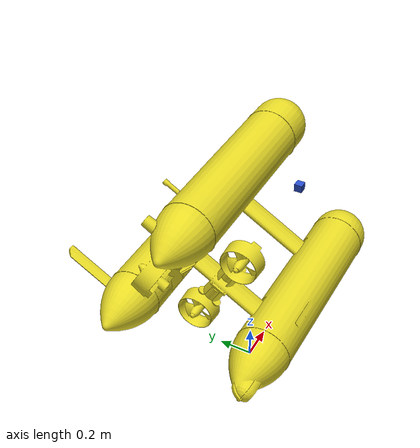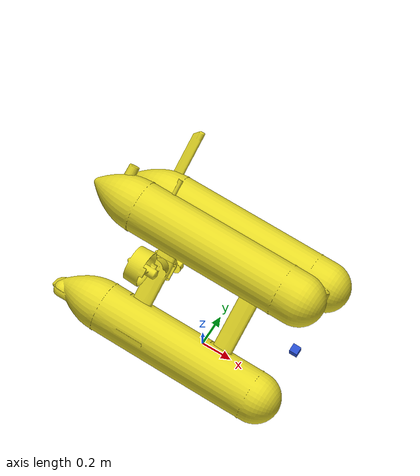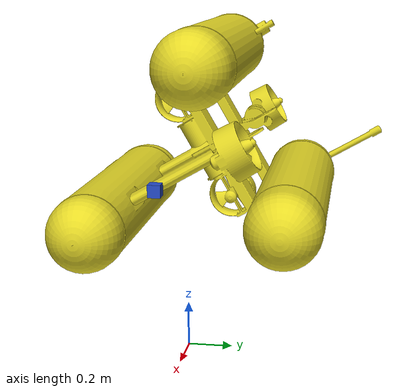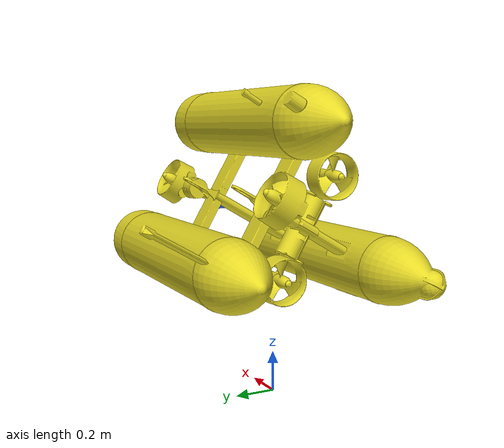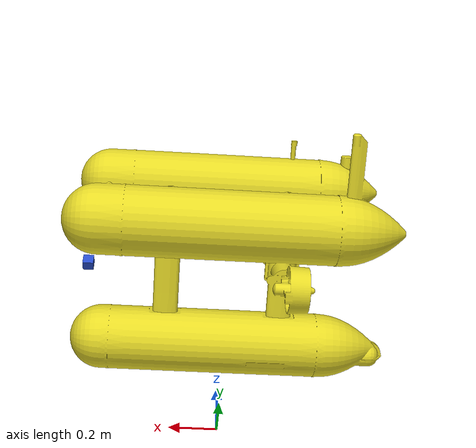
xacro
<?xml version="1.0"?>

<robot name="drone" xmlns:xacro="http://ros.org/wiki/xacro">

	<xacro:include filename="$(find import_duck_gazebo)/urdf/wheel.urdf.xacro" />

  <property name="M_PI" value="3.1415926535897931" />
  <property name="M_PI_2" value="1.570796327" />
  <property name="DEG_TO_RAD" value="0.017453293" />

  <!-- Main body radius and height -->
  <!-- Main Body Cylinder base   -->
  <property name="base_height" value="0.02" />
  <property name="base_radius" value="0.15" />
  <property name="base_mass" value="5" /> <!-- in kg-->

  <!-- caster wheel radius and height -->
  <!-- caster wheel mass -->
  <property name="caster_f_height" value="0.04" />
  <property name="caster_f_radius" value="0.025" />
  <property name="caster_f_mass" value="0.5" /> <!-- in kg-->

  <!-- caster wheel radius and height -->
  <!-- caster wheel mass -->
  <property name="caster_b_height" value="0.04" />
  <property name="caster_b_radius" value="0.025" />
  <property name="caster_b_mass" value="0.5" /> <!-- in kg-->

  <!-- Wheels -->

  <property name="wheel_mass" value="2.5" /> --> <!-- in kg-->

  <property name="base_x_origin_to_wheel_origin" value="0.25" />
  <property name="base_y_origin_to_wheel_origin" value="0.3" />
  <property name="base_z_origin_to_wheel_origin" value="0.0" />

  <!-- Hokuyo Laser scanner -->
  <property name="hokuyo_size" value="0.05" />

  <!-- Macro for calculating inertia of cylinder -->
  <macro name="cylinder_inertia" params="m r h">
    <inertia  ixx="${m*(3*r*r+h*h)/12}" ixy = "0" ixz = "0"
              iyy="${m*(3*r*r+h*h)/12}" iyz = "0"
              izz="${m*r*r/2}" />
  </macro>

  <link name="base_footprint">
    <inertial>
      <mass value="0.0001" />
      <origin xyz="0 0 0" />
      <inertia ixx="0.0001" ixy="0.0" ixz="0.0"
          iyy="0.0001" iyz="0.0"
          izz="0.0001" />
    </inertial>
    <visual>
        <origin xyz="0 0 0" rpy="0 0 0" />
        <geometry>
            <box size="0.001 0.001 0.001" />
        </geometry>
    </visual>
  </link>

  <gazebo reference="base_footprint">
    <turnGravityOff>false</turnGravityOff>
  </gazebo>

  <joint name="base_footprint_joint" type="fixed">
    <origin xyz="0 0 ${wheel_radius - base_z_origin_to_wheel_origin}" rpy="0 0 0" />
    <parent link="base_footprint"/>
    <child link="drone_link" />
  </joint>

<!-- Girona 500 link -->

	<link name="drone_link">
		<inertial>
			<mass value="2" />
			<origin xyz="0 0 0" />
			<inertia ixx="0.01152" ixy="0.0" ixz="0.0" iyy="0.01152" iyz="0.0" izz="0.0218" />
		</inertial>

		<visual>
			<origin xyz="0 0 0.5" rpy="${M_PI + M_PI/6} 0 0" />
			<geometry>
	  		<mesh filename="package://import_duck_gazebo/meshes/girona500.dae"/>
			</geometry>
		</visual>

		<collision>
			<origin xyz="0 0 0" rpy="${M_PI + M_PI/6} 0 0" />
			<geometry>
	  			<mesh filename="package://import_duck_gazebo/meshes/girona500.stl"/>
			</geometry>
		</collision>
	</link>

	<gazebo reference="drone_link">
		<material>Gazebo/Yellow</material>
	</gazebo>

<!--Caster front  -->

    <link name="caster_front_link">

      <collision>
        <geometry>

	<sphere radius="${caster_f_radius}" />

        </geometry>
      <origin xyz="0 0.02 0" rpy="${M_PI/2} 0 0" />
      </collision>
      <inertial>
        <mass value="${caster_f_mass}" />
        <origin xyz="0 0 0" />
        <inertia ixx="0.001" ixy="0.0" ixz="0.0"
                 iyy="0.001" iyz="0.0"
                 izz="0.001" />
      </inertial>
    </link>

 	<joint name="caster_front_joint" type="fixed">
      <parent link="drone_link"/>
      <child link="caster_front_link"/>
      <origin xyz="0.115 0.0 0.007" rpy="${-M_PI/2} 0 0"/>
    </joint>

  <gazebo reference="caster_front_link">
    <turnGravityOff>false</turnGravityOff>
  </gazebo>

<!--Caster back  -->

    <link name="caster_back_link">

      <collision>
        <geometry>
		<sphere radius="${caster_b_radius}" />
        </geometry>
      <origin xyz="0 0.02 0 " rpy="${M_PI/2} 0 0" />
      </collision>
      <inertial>
        <mass value="${caster_b_mass}" />
        <origin xyz="0 0 0" />
        <inertia ixx="0.001" ixy="0.0" ixz="0.0"
                 iyy="0.001" iyz="0.0"
                 izz="0.001" />
      </inertial>
    </link>

    <joint name="caster_back_joint" type="fixed">
      <parent link="drone_link"/>
      <child link="caster_back_link"/>
      <origin xyz="-0.135 0.0 0.009" rpy="${-M_PI/2} 0 0"/>
    </joint>

  <gazebo reference="caster_back_link">
    <turnGravityOff>false</turnGravityOff>
  </gazebo>

<!-- Wheel Definitions -->

  <wheel fb="front" lr="right" parent="drone_link" translateX="0" translateY="1.2" flipY="1"/>
  <wheel fb="front" lr="left" parent="drone_link" translateX="0" translateY="0.08" flipY="1"/>

	<!-- Sensors -->

  <link name="hokuyo_link">
    <visual>
      <origin xyz="0 0 0" rpy="0 0 0" />
      <geometry>
        <box size="${hokuyo_size} ${hokuyo_size} ${hokuyo_size}"/>
      </geometry>
      <material name="Blue" />
    </visual>
  </link>

  <joint name="hokuyo_joint" type="fixed">
    <origin xyz="${base_radius - hokuyo_size/2 + 0.5} 0 ${base_height+hokuyo_size/4 +0.5}" rpy="0 0 0" />
    <parent link="drone_link"/>
    <child link="hokuyo_link" />
	<axis xyz="0 0 1" />
	<limit effort="300" velocity="1" lower="-2.61799387799" upper="2.6128806087" />
  </joint>

  <gazebo reference="hokuyo_link">
    <material>Gazebo/Blue</material>
    <turnGravityOff>false</turnGravityOff>
    <sensor type="ray" name="head_hokuyo_sensor">
      <pose>${hokuyo_size/2} 0 0 0 0 0</pose>
      <visualize>true</visualize>
      <update_rate>40</update_rate>
      <ray>
        <scan>
          <horizontal>
            <samples>720</samples>
            <resolution>1</resolution>
            <min_angle>-1.570796</min_angle>
            <max_angle>1.570796</max_angle>
          </horizontal>
        </scan>
        <range>
          <min>0.1</min>
          <max>20.0</max>
          <resolution>0.001</resolution>
        </range>
      </ray>
      <plugin name="gazebo_ros_head_hokuyo_controller" filename="libgazebo_ros_laser.so">
        <topicName>/scan</topicName>
        <frameName>hokuyo_link</frameName>
      </plugin>
    </sensor>
  </gazebo>

  <!-- Differential drive controller  -->
  <gazebo>
    <plugin name="differential_drive_controller" filename="libgazebo_ros_diff_drive.so">

      <rosDebugLevel>Debug</rosDebugLevel>
      <publishWheelTF>false</publishWheelTF>
      <robotNamespace>/</robotNamespace>
      <publishTf>1</publishTf>
      <publishWheelJointState>false</publishWheelJointState>
      <alwaysOn>true</alwaysOn>
      <updateRate>100.0</updateRate>
      <leftJoint>front_left_wheel_joint</leftJoint>
      <rightJoint>front_right_wheel_joint</rightJoint>
      <wheelSeparation>${2*base_radius}</wheelSeparation>
      <wheelDiameter>${2*wheel_radius}</wheelDiameter>
      <broadcastTF>1</broadcastTF>
      <wheelTorque>30</wheelTorque>
      <wheelAcceleration>1.8</wheelAcceleration>
      <commandTopic>cmd_vel</commandTopic>
      <odometryFrame>odom</odometryFrame>
      <odometryTopic>odom</odometryTopic>
      <robotBaseFrame>base_footprint</robotBaseFrame>
      <legacyMode>false</legacyMode>
      <odometrySource>world</odometrySource> <!-- 'encoder' instead of 'world' is also possible -->
      <publishTf>1</publishTf>

    </plugin>
  </gazebo>

</robot>

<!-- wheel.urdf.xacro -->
<robot name="wheel" xmlns:xacro="http://www.ros.org/wiki/xacro">

  <!-- Wheels -->
  <property name="wheel_radius" value="0.35" />
  <property name="wheel_height" value="0.01" />
  <property name="wheel_mass" value="2.5" /> <!-- in kg-->

  <property name="base_x_origin_to_wheel_origin" value="0.25" />
  <property name="base_y_origin_to_wheel_origin" value="0.3" />
  <property name="base_z_origin_to_wheel_origin" value="0.0" />

  <macro name="cylinder_inertia" params="m r h">
    <inertia  ixx="${m*(3*r*r+h*h)/12}" ixy = "0" ixz = "0"
              iyy="${m*(3*r*r+h*h)/12}" iyz = "0"
              izz="${m*r*r/2}" />
  </macro>

  <xacro:macro name="wheel" params="fb lr parent translateX translateY flipY"> <!--fb : front, back ; lr: left, right -->
    <link name="${fb}_${lr}_wheel">
      <collision>
        <origin xyz="0 0 0" rpy="${flipY*M_PI/2} 0 0 " />
        <geometry>
          <cylinder length="${wheel_height}" radius="${wheel_radius}" />
        </geometry>
      </collision>
      <inertial>
        <mass value="${wheel_mass}" />
        <origin xyz="0 0 0" />
        <cylinder_inertia  m="${wheel_mass}" r="${wheel_radius}" h="${wheel_height}" />
      </inertial>
    </link>

    <gazebo reference="${fb}_${lr}_wheel">
      <mu1 value="1.0"/>
      <mu2 value="1.0"/>
      <kp  value="10000000.0" />
      <kd  value="1.0" />
      <fdir1 value="1 0 0"/>
      <material>Gazebo/Grey</material>
      <turnGravityOff>false</turnGravityOff>
    </gazebo>

    <joint name="${fb}_${lr}_wheel_joint" type="continuous">
      <parent link="${parent}"/>
      <child link="${fb}_${lr}_wheel"/>
      <origin xyz="${translateX * base_x_origin_to_wheel_origin} ${translateY * base_y_origin_to_wheel_origin} ${base_z_origin_to_wheel_origin}" rpy="0 0 0" />
      <axis xyz="0 1 0" rpy="0  0" />
      <limit effort="100" velocity="100"/>
      <joint_properties damping="0.0" friction="0.0"/>
    </joint>

    <!-- Transmission is important to link the joints and the controller -->
    <transmission name="${fb}_${lr}_wheel_joint_trans">
      <type>transmission_interface/SimpleTransmission</type>
      <joint name="${fb}_${lr}_wheel_joint" />
      <actuator name="${fb}_${lr}_wheel_joint_motor">
        <hardwareInterface>EffortJointInterface</hardwareInterface>
        <mechanicalReduction>1</mechanicalReduction>
      </actuator>
    </transmission>

  </xacro:macro>
</robot>
